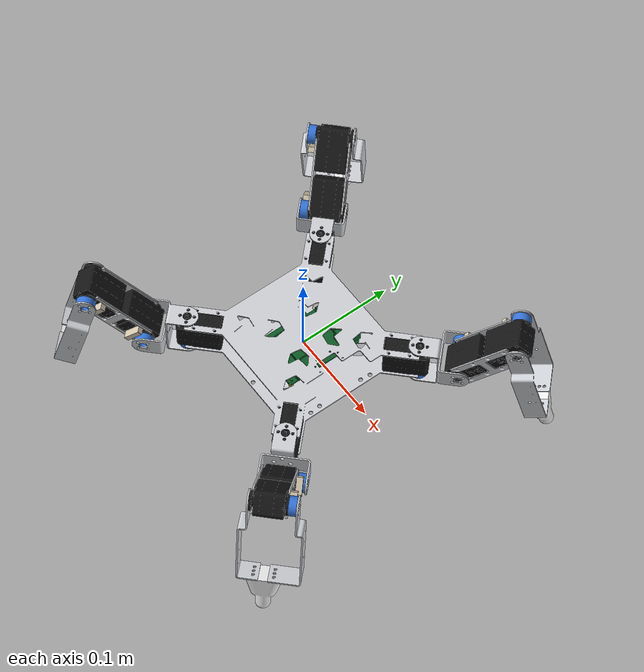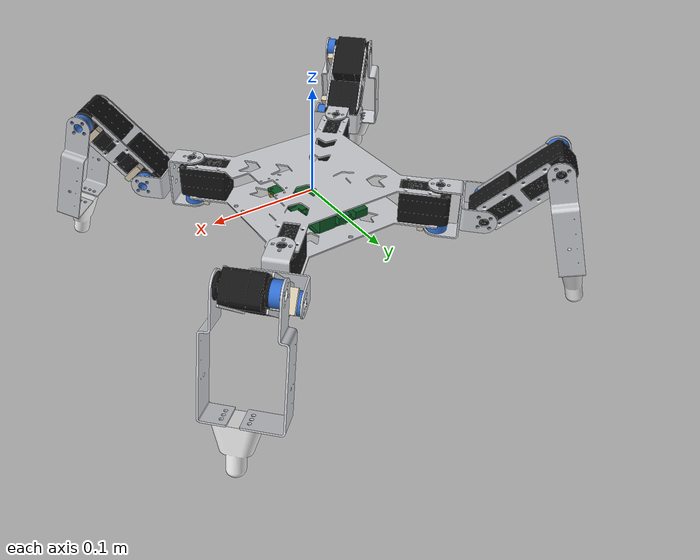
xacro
<?xml version="1.0"?>
<robot name="twist_2_0" xmlns:xacro="http://www.ros.org/wiki/xacro">

  <xacro:include filename="$(find twist_walker)/urdf/twist_2_0.urdf"/>

  <xacro:macro name="pos_joint" params="name">
    <joint name="${name}">
      <command_interface name="position"/>
      <state_interface name="position"><param name="initial_value">0.0</param></state_interface>
      <state_interface name="velocity"/>
      <state_interface name="effort"/>
    </joint>
  </xacro:macro>

  <xacro:macro name="leg" params="prefix">
    <xacro:pos_joint name="${prefix}_hip_yaw"/>
    <xacro:pos_joint name="${prefix}_hip_pitch"/>
    <xacro:pos_joint name="${prefix}_knee"/>
  </xacro:macro>

  <ros2_control name="TwistGzSystem" type="system">
    <hardware>
      <plugin>gz_ros2_control/GazeboSimSystem</plugin>
    </hardware>
    <xacro:leg prefix="FL"/>
    <xacro:leg prefix="FR"/>
    <xacro:leg prefix="RL"/>
    <xacro:leg prefix="RR"/>
  </ros2_control>

  <gazebo>
    <plugin filename="gz_ros2_control-system" name="gz_ros2_control::GazeboSimROS2ControlPlugin">
      <parameters>$(find twist_walker)/config/controllers.yaml</parameters>
    </plugin>
  </gazebo>

</robot>

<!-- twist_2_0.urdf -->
<robot name="twist_2_0">
  <material name="aluminium"><color rgba="0.8 0.81 0.83 1"/></material>
  <material name="servo"><color rgba="0.08 0.08 0.08 1"/></material>
  <material name="board"><color rgba="0.05 0.35 0.15 1"/></material>
  <material name="foot"><color rgba="0.93 0.93 0.93 1"/></material>
  <material name="standoff"><color rgba="0.8 0.65 0.3 1"/></material>
  <material name="plug"><color rgba="0.85 0.8 0.7 1"/></material>
  <material name="spacer"><color rgba="0.2 0.45 0.85 1"/></material>
  <link name="base_link">
    <inertial>
      <origin xyz="-0.000854272 0.00157116 -0.00122145" rpy="0 0 0"/>
      <mass value="0.40384"/>
      <inertia ixx="1.5767e-03" ixy="-2.7463e-06" ixz="4.7075e-06" iyy="1.5408e-03" iyz="1.4569e-06" izz="2.9927e-03"/>
    </inertial>
    <visual>
      <origin xyz="0 0 0" rpy="0 0 0"/>
      <geometry><mesh filename="package://twist_2_0_description/meshes/visual/base_link_aluminium.stl"/></geometry>
      <material name="aluminium"/>
    </visual>
    <visual>
      <origin xyz="0 0 0" rpy="0 0 0"/>
      <geometry><mesh filename="package://twist_2_0_description/meshes/visual/base_link_board.stl"/></geometry>
      <material name="board"/>
    </visual>
    <visual>
      <origin xyz="0 0 0" rpy="0 0 0"/>
      <geometry><mesh filename="package://twist_2_0_description/meshes/visual/base_link_standoff.stl"/></geometry>
      <material name="standoff"/>
    </visual>
    <visual>
      <origin xyz="0 0 0" rpy="0 0 0"/>
      <geometry><mesh filename="package://twist_2_0_description/meshes/visual/base_link_plug.stl"/></geometry>
      <material name="plug"/>
    </visual>
    <visual>
      <origin xyz="-0.0810867 0.0810867 0" rpy="1.5708 0 -0.785398"/>
      <geometry><mesh filename="package://twist_2_0_description/meshes/visual/sts3215.stl"/></geometry>
      <material name="servo"/>
    </visual>
    <visual>
      <origin xyz="0.0810867 -0.0810867 0" rpy="1.5708 0 2.35619"/>
      <geometry><mesh filename="package://twist_2_0_description/meshes/visual/sts3215.stl"/></geometry>
      <material name="servo"/>
    </visual>
    <visual>
      <origin xyz="-0.0810867 -0.0810867 0" rpy="1.5708 0 0.785398"/>
      <geometry><mesh filename="package://twist_2_0_description/meshes/visual/sts3215.stl"/></geometry>
      <material name="servo"/>
    </visual>
    <visual>
      <origin xyz="0.0809099 0.0809099 0" rpy="1.5708 0 -2.35619"/>
      <geometry><mesh filename="package://twist_2_0_description/meshes/visual/sts3215.stl"/></geometry>
      <material name="servo"/>
    </visual>
    <collision name="Twist_Bottom">
      <origin xyz="0 0 0" rpy="0 0 0"/>
      <geometry><mesh filename="package://twist_2_0_description/meshes/collision/base_link_0.stl"/></geometry>
    </collision>
    <collision name="Twist_Top">
      <origin xyz="0 0 0" rpy="0 0 0"/>
      <geometry><mesh filename="package://twist_2_0_description/meshes/collision/base_link_1.stl"/></geometry>
    </collision>
    <collision name="ESP32mP4mModulemDEVmKIT">
      <origin xyz="0 0 0" rpy="0 0 0"/>
      <geometry><mesh filename="package://twist_2_0_description/meshes/collision/base_link_2.stl"/></geometry>
    </collision>
    <collision name="Standoff_1">
      <origin xyz="0 0 0" rpy="0 0 0"/>
      <geometry><mesh filename="package://twist_2_0_description/meshes/collision/base_link_3.stl"/></geometry>
    </collision>
    <collision name="Standoff_2">
      <origin xyz="0 0 0" rpy="0 0 0"/>
      <geometry><mesh filename="package://twist_2_0_description/meshes/collision/base_link_4.stl"/></geometry>
    </collision>
    <collision name="Standoff_3">
      <origin xyz="0 0 0" rpy="0 0 0"/>
      <geometry><mesh filename="package://twist_2_0_description/meshes/collision/base_link_5.stl"/></geometry>
    </collision>
    <collision name="Standoff_4">
      <origin xyz="0 0 0" rpy="0 0 0"/>
      <geometry><mesh filename="package://twist_2_0_description/meshes/collision/base_link_6.stl"/></geometry>
    </collision>
    <collision name="STS3215_HipYaw_RL">
      <origin xyz="0 0 0" rpy="0 0 0"/>
      <geometry><mesh filename="package://twist_2_0_description/meshes/collision/base_link_7.stl"/></geometry>
    </collision>
    <collision name="Cable_HipYaw_RL">
      <origin xyz="0 0 0" rpy="0 0 0"/>
      <geometry><mesh filename="package://twist_2_0_description/meshes/collision/base_link_8.stl"/></geometry>
    </collision>
    <collision name="STS3215_HipYaw_FR">
      <origin xyz="0 0 0" rpy="0 0 0"/>
      <geometry><mesh filename="package://twist_2_0_description/meshes/collision/base_link_9.stl"/></geometry>
    </collision>
    <collision name="Cable_HipYaw_FR">
      <origin xyz="0 0 0" rpy="0 0 0"/>
      <geometry><mesh filename="package://twist_2_0_description/meshes/collision/base_link_10.stl"/></geometry>
    </collision>
    <collision name="STS3215_HipYaw_RR">
      <origin xyz="0 0 0" rpy="0 0 0"/>
      <geometry><mesh filename="package://twist_2_0_description/meshes/collision/base_link_11.stl"/></geometry>
    </collision>
    <collision name="Cable_HipYaw_RR">
      <origin xyz="0 0 0" rpy="0 0 0"/>
      <geometry><mesh filename="package://twist_2_0_description/meshes/collision/base_link_12.stl"/></geometry>
    </collision>
    <collision name="STS3215_HipYaw_FL">
      <origin xyz="0 0 0" rpy="0 0 0"/>
      <geometry><mesh filename="package://twist_2_0_description/meshes/collision/base_link_13.stl"/></geometry>
    </collision>
    <collision name="Cable_HipYaw_FL">
      <origin xyz="0 0 0" rpy="0 0 0"/>
      <geometry><mesh filename="package://twist_2_0_description/meshes/collision/base_link_14.stl"/></geometry>
    </collision>
  </link>
  <link name="FL_hip">
    <inertial>
      <origin xyz="0.0116093 0.0166749 -0.00358194" rpy="0 0 0"/>
      <mass value="0.01994"/>
      <inertia ixx="9.2944e-06" ixy="1.1357e-07" ixz="-5.8079e-07" iyy="7.1399e-06" iyz="-9.4267e-07" izz="8.1036e-06"/>
    </inertial>
    <visual>
      <origin xyz="0 0 0" rpy="0 0 0"/>
      <geometry><mesh filename="package://twist_2_0_description/meshes/visual/FL_hip_aluminium.stl"/></geometry>
      <material name="aluminium"/>
    </visual>
    <visual>
      <origin xyz="0 0 0" rpy="0 0 0"/>
      <geometry><mesh filename="package://twist_2_0_description/meshes/visual/FL_hip_spacer.stl"/></geometry>
      <material name="spacer"/>
    </visual>
    <collision name="Holder_HipYaw">
      <origin xyz="0 0 0" rpy="0 0 0"/>
      <geometry><mesh filename="package://twist_2_0_description/meshes/collision/FL_hip_0.stl"/></geometry>
    </collision>
    <collision name="Holder_HipPitch">
      <origin xyz="0 0 0" rpy="0 0 0"/>
      <geometry><mesh filename="package://twist_2_0_description/meshes/collision/FL_hip_1.stl"/></geometry>
    </collision>
    <collision name="Spacer_HipYaw">
      <origin xyz="0 0 0" rpy="0 0 0"/>
      <geometry><mesh filename="package://twist_2_0_description/meshes/collision/FL_hip_2.stl"/></geometry>
    </collision>
    <collision name="Spacer_HipPitch">
      <origin xyz="0 0 0" rpy="0 0 0"/>
      <geometry><mesh filename="package://twist_2_0_description/meshes/collision/FL_hip_3.stl"/></geometry>
    </collision>
  </link>
  <link name="FL_thigh">
    <inertial>
      <origin xyz="0.0189992 0.0195008 0.0272236" rpy="0 0 0"/>
      <mass value="0.12481"/>
      <inertia ixx="8.9071e-05" ixy="-1.9952e-05" ixz="-3.4088e-05" iyy="8.9071e-05" iyz="-3.4088e-05" izz="6.9105e-05"/>
    </inertial>
    <visual>
      <origin xyz="0 0 0" rpy="0 0 0"/>
      <geometry><mesh filename="package://twist_2_0_description/meshes/visual/FL_thigh_aluminium.stl"/></geometry>
      <material name="aluminium"/>
    </visual>
    <visual>
      <origin xyz="0 0 0" rpy="0 0 0"/>
      <geometry><mesh filename="package://twist_2_0_description/meshes/visual/FL_thigh_plug.stl"/></geometry>
      <material name="plug"/>
    </visual>
    <visual>
      <origin xyz="0 0 0" rpy="-3.14159 -0.785398 0.785398"/>
      <geometry><mesh filename="package://twist_2_0_description/meshes/visual/sts3215.stl"/></geometry>
      <material name="servo"/>
    </visual>
    <visual>
      <origin xyz="0.0385 0.0385 0.0544472" rpy="0 0.785398 -2.35619"/>
      <geometry><mesh filename="package://twist_2_0_description/meshes/visual/sts3215.stl"/></geometry>
      <material name="servo"/>
    </visual>
    <collision name="THIGH_STS3215_HipPitch">
      <origin xyz="0 0 0" rpy="0 0 0"/>
      <geometry><mesh filename="package://twist_2_0_description/meshes/collision/FL_thigh_0.stl"/></geometry>
    </collision>
    <collision name="THIGH_Thigh_Front">
      <origin xyz="0 0 0" rpy="0 0 0"/>
      <geometry><mesh filename="package://twist_2_0_description/meshes/collision/FL_thigh_1.stl"/></geometry>
    </collision>
    <collision name="THIGH_Thigh_Back">
      <origin xyz="0 0 0" rpy="0 0 0"/>
      <geometry><mesh filename="package://twist_2_0_description/meshes/collision/FL_thigh_2.stl"/></geometry>
    </collision>
    <collision name="THIGH_STS3215_Knee">
      <origin xyz="0 0 0" rpy="0 0 0"/>
      <geometry><mesh filename="package://twist_2_0_description/meshes/collision/FL_thigh_3.stl"/></geometry>
    </collision>
    <collision name="THIGH_Cable_HipPitch">
      <origin xyz="0 0 0" rpy="0 0 0"/>
      <geometry><mesh filename="package://twist_2_0_description/meshes/collision/FL_thigh_4.stl"/></geometry>
    </collision>
    <collision name="THIGH_Cable_Knee">
      <origin xyz="0 0 0" rpy="0 0 0"/>
      <geometry><mesh filename="package://twist_2_0_description/meshes/collision/FL_thigh_5.stl"/></geometry>
    </collision>
  </link>
  <link name="FL_shin">
    <inertial>
      <origin xyz="0.0113278 0.0145833 -0.0683783" rpy="0 0 0"/>
      <mass value="0.03688"/>
      <inertia ixx="7.2223e-05" ixy="6.4598e-06" ixz="1.5063e-05" iyy="7.4975e-05" iyz="7.7873e-06" izz="2.4087e-05"/>
    </inertial>
    <visual>
      <origin xyz="0 0 0" rpy="0 0 0"/>
      <geometry><mesh filename="package://twist_2_0_description/meshes/visual/FL_shin_aluminium.stl"/></geometry>
      <material name="aluminium"/>
    </visual>
    <visual>
      <origin xyz="0 0 0" rpy="0 0 0"/>
      <geometry><mesh filename="package://twist_2_0_description/meshes/visual/FL_shin_foot.stl"/></geometry>
      <material name="foot"/>
    </visual>
    <visual>
      <origin xyz="0 0 0" rpy="0 0 0"/>
      <geometry><mesh filename="package://twist_2_0_description/meshes/visual/FL_shin_spacer.stl"/></geometry>
      <material name="spacer"/>
    </visual>
    <collision name="SHIN_Shin_Horn">
      <origin xyz="0 0 0" rpy="0 0 0"/>
      <geometry><mesh filename="package://twist_2_0_description/meshes/collision/FL_shin_0.stl"/></geometry>
    </collision>
    <collision name="SHIN_Shin_Idler">
      <origin xyz="0 0 0" rpy="0 0 0"/>
      <geometry><mesh filename="package://twist_2_0_description/meshes/collision/FL_shin_1.stl"/></geometry>
    </collision>
    <collision name="SHIN_Foot">
      <origin xyz="0 0 0" rpy="0 0 0"/>
      <geometry><mesh filename="package://twist_2_0_description/meshes/collision/FL_shin_2.stl"/></geometry>
    </collision>
    <collision name="SHIN_Spacer_Knee">
      <origin xyz="0 0 0" rpy="0 0 0"/>
      <geometry><mesh filename="package://twist_2_0_description/meshes/collision/FL_shin_3.stl"/></geometry>
    </collision>
    <collision name="foot_tip">
      <origin xyz="0.0258498 0.0219084 -0.131914" rpy="0 0 0"/>
      <geometry><sphere radius="0.0075"/></geometry>
    </collision>
  </link>
  <link name="FR_hip">
    <inertial>
      <origin xyz="0.0166749 -0.0116093 -0.00358194" rpy="0 0 0"/>
      <mass value="0.01994"/>
      <inertia ixx="7.1399e-06" ixy="-1.1357e-07" ixz="-9.4267e-07" iyy="9.2944e-06" iyz="5.8079e-07" izz="8.1036e-06"/>
    </inertial>
    <visual>
      <origin xyz="0 0 0" rpy="0 0 0"/>
      <geometry><mesh filename="package://twist_2_0_description/meshes/visual/FR_hip_aluminium.stl"/></geometry>
      <material name="aluminium"/>
    </visual>
    <visual>
      <origin xyz="0 0 0" rpy="0 0 0"/>
      <geometry><mesh filename="package://twist_2_0_description/meshes/visual/FR_hip_spacer.stl"/></geometry>
      <material name="spacer"/>
    </visual>
    <collision name="Holder_HipYaw">
      <origin xyz="0 0 0" rpy="0 0 0"/>
      <geometry><mesh filename="package://twist_2_0_description/meshes/collision/FR_hip_0.stl"/></geometry>
    </collision>
    <collision name="Holder_HipPitch">
      <origin xyz="0 0 0" rpy="0 0 0"/>
      <geometry><mesh filename="package://twist_2_0_description/meshes/collision/FR_hip_1.stl"/></geometry>
    </collision>
    <collision name="Spacer_HipYaw">
      <origin xyz="0 0 0" rpy="0 0 0"/>
      <geometry><mesh filename="package://twist_2_0_description/meshes/collision/FR_hip_2.stl"/></geometry>
    </collision>
    <collision name="Spacer_HipPitch">
      <origin xyz="0 0 0" rpy="0 0 0"/>
      <geometry><mesh filename="package://twist_2_0_description/meshes/collision/FR_hip_3.stl"/></geometry>
    </collision>
  </link>
  <link name="FR_thigh">
    <inertial>
      <origin xyz="0.0195008 -0.0189992 0.0272236" rpy="0 0 0"/>
      <mass value="0.12481"/>
      <inertia ixx="8.9071e-05" ixy="1.9952e-05" ixz="-3.4088e-05" iyy="8.9071e-05" iyz="3.4088e-05" izz="6.9105e-05"/>
    </inertial>
    <visual>
      <origin xyz="0 0 0" rpy="0 0 0"/>
      <geometry><mesh filename="package://twist_2_0_description/meshes/visual/FR_thigh_aluminium.stl"/></geometry>
      <material name="aluminium"/>
    </visual>
    <visual>
      <origin xyz="0 0 0" rpy="0 0 0"/>
      <geometry><mesh filename="package://twist_2_0_description/meshes/visual/FR_thigh_plug.stl"/></geometry>
      <material name="plug"/>
    </visual>
    <visual>
      <origin xyz="0 0 0" rpy="3.14159 -0.785398 -0.785398"/>
      <geometry><mesh filename="package://twist_2_0_description/meshes/visual/sts3215.stl"/></geometry>
      <material name="servo"/>
    </visual>
    <visual>
      <origin xyz="0.0385 -0.0385 0.0544472" rpy="0 0.785398 2.35619"/>
      <geometry><mesh filename="package://twist_2_0_description/meshes/visual/sts3215.stl"/></geometry>
      <material name="servo"/>
    </visual>
    <collision name="THIGH_STS3215_HipPitch">
      <origin xyz="0 0 0" rpy="0 0 0"/>
      <geometry><mesh filename="package://twist_2_0_description/meshes/collision/FR_thigh_0.stl"/></geometry>
    </collision>
    <collision name="THIGH_Thigh_Front">
      <origin xyz="0 0 0" rpy="0 0 0"/>
      <geometry><mesh filename="package://twist_2_0_description/meshes/collision/FR_thigh_1.stl"/></geometry>
    </collision>
    <collision name="THIGH_Thigh_Back">
      <origin xyz="0 0 0" rpy="0 0 0"/>
      <geometry><mesh filename="package://twist_2_0_description/meshes/collision/FR_thigh_2.stl"/></geometry>
    </collision>
    <collision name="THIGH_STS3215_Knee">
      <origin xyz="0 0 0" rpy="0 0 0"/>
      <geometry><mesh filename="package://twist_2_0_description/meshes/collision/FR_thigh_3.stl"/></geometry>
    </collision>
    <collision name="THIGH_Cable_HipPitch">
      <origin xyz="0 0 0" rpy="0 0 0"/>
      <geometry><mesh filename="package://twist_2_0_description/meshes/collision/FR_thigh_4.stl"/></geometry>
    </collision>
    <collision name="THIGH_Cable_Knee">
      <origin xyz="0 0 0" rpy="0 0 0"/>
      <geometry><mesh filename="package://twist_2_0_description/meshes/collision/FR_thigh_5.stl"/></geometry>
    </collision>
  </link>
  <link name="FR_shin">
    <inertial>
      <origin xyz="0.0145833 -0.0113278 -0.0683783" rpy="0 0 0"/>
      <mass value="0.03688"/>
      <inertia ixx="7.4975e-05" ixy="-6.4598e-06" ixz="7.7873e-06" iyy="7.2223e-05" iyz="-1.5063e-05" izz="2.4087e-05"/>
    </inertial>
    <visual>
      <origin xyz="0 0 0" rpy="0 0 0"/>
      <geometry><mesh filename="package://twist_2_0_description/meshes/visual/FR_shin_aluminium.stl"/></geometry>
      <material name="aluminium"/>
    </visual>
    <visual>
      <origin xyz="0 0 0" rpy="0 0 0"/>
      <geometry><mesh filename="package://twist_2_0_description/meshes/visual/FR_shin_foot.stl"/></geometry>
      <material name="foot"/>
    </visual>
    <visual>
      <origin xyz="0 0 0" rpy="0 0 0"/>
      <geometry><mesh filename="package://twist_2_0_description/meshes/visual/FR_shin_spacer.stl"/></geometry>
      <material name="spacer"/>
    </visual>
    <collision name="SHIN_Shin_Horn">
      <origin xyz="0 0 0" rpy="0 0 0"/>
      <geometry><mesh filename="package://twist_2_0_description/meshes/collision/FR_shin_0.stl"/></geometry>
    </collision>
    <collision name="SHIN_Shin_Idler">
      <origin xyz="0 0 0" rpy="0 0 0"/>
      <geometry><mesh filename="package://twist_2_0_description/meshes/collision/FR_shin_1.stl"/></geometry>
    </collision>
    <collision name="SHIN_Foot">
      <origin xyz="0 0 0" rpy="0 0 0"/>
      <geometry><mesh filename="package://twist_2_0_description/meshes/collision/FR_shin_2.stl"/></geometry>
    </collision>
    <collision name="SHIN_Spacer_Knee">
      <origin xyz="0 0 0" rpy="0 0 0"/>
      <geometry><mesh filename="package://twist_2_0_description/meshes/collision/FR_shin_3.stl"/></geometry>
    </collision>
    <collision name="foot_tip">
      <origin xyz="0.0223142 -0.0254439 -0.131914" rpy="0 0 0"/>
      <geometry><sphere radius="0.0075"/></geometry>
    </collision>
  </link>
  <link name="RL_hip">
    <inertial>
      <origin xyz="-0.0166749 0.0116093 -0.00358194" rpy="0 0 0"/>
      <mass value="0.01994"/>
      <inertia ixx="7.1399e-06" ixy="-1.1357e-07" ixz="9.4267e-07" iyy="9.2944e-06" iyz="-5.8079e-07" izz="8.1036e-06"/>
    </inertial>
    <visual>
      <origin xyz="0 0 0" rpy="0 0 0"/>
      <geometry><mesh filename="package://twist_2_0_description/meshes/visual/RL_hip_aluminium.stl"/></geometry>
      <material name="aluminium"/>
    </visual>
    <visual>
      <origin xyz="0 0 0" rpy="0 0 0"/>
      <geometry><mesh filename="package://twist_2_0_description/meshes/visual/RL_hip_spacer.stl"/></geometry>
      <material name="spacer"/>
    </visual>
    <collision name="Holder_HipYaw">
      <origin xyz="0 0 0" rpy="0 0 0"/>
      <geometry><mesh filename="package://twist_2_0_description/meshes/collision/RL_hip_0.stl"/></geometry>
    </collision>
    <collision name="Holder_HipPitch">
      <origin xyz="0 0 0" rpy="0 0 0"/>
      <geometry><mesh filename="package://twist_2_0_description/meshes/collision/RL_hip_1.stl"/></geometry>
    </collision>
    <collision name="Spacer_HipYaw">
      <origin xyz="0 0 0" rpy="0 0 0"/>
      <geometry><mesh filename="package://twist_2_0_description/meshes/collision/RL_hip_2.stl"/></geometry>
    </collision>
    <collision name="Spacer_HipPitch">
      <origin xyz="0 0 0" rpy="0 0 0"/>
      <geometry><mesh filename="package://twist_2_0_description/meshes/collision/RL_hip_3.stl"/></geometry>
    </collision>
  </link>
  <link name="RL_thigh">
    <inertial>
      <origin xyz="-0.0195008 0.0189992 0.0272236" rpy="0 0 0"/>
      <mass value="0.12481"/>
      <inertia ixx="8.9071e-05" ixy="1.9952e-05" ixz="3.4088e-05" iyy="8.9071e-05" iyz="-3.4088e-05" izz="6.9105e-05"/>
    </inertial>
    <visual>
      <origin xyz="0 0 0" rpy="0 0 0"/>
      <geometry><mesh filename="package://twist_2_0_description/meshes/visual/RL_thigh_aluminium.stl"/></geometry>
      <material name="aluminium"/>
    </visual>
    <visual>
      <origin xyz="0 0 0" rpy="0 0 0"/>
      <geometry><mesh filename="package://twist_2_0_description/meshes/visual/RL_thigh_plug.stl"/></geometry>
      <material name="plug"/>
    </visual>
    <visual>
      <origin xyz="0 0 0" rpy="3.14159 -0.785398 2.35619"/>
      <geometry><mesh filename="package://twist_2_0_description/meshes/visual/sts3215.stl"/></geometry>
      <material name="servo"/>
    </visual>
    <visual>
      <origin xyz="-0.0385 0.0385 0.0544472" rpy="0 0.785398 -0.785398"/>
      <geometry><mesh filename="package://twist_2_0_description/meshes/visual/sts3215.stl"/></geometry>
      <material name="servo"/>
    </visual>
    <collision name="THIGH_STS3215_HipPitch">
      <origin xyz="0 0 0" rpy="0 0 0"/>
      <geometry><mesh filename="package://twist_2_0_description/meshes/collision/RL_thigh_0.stl"/></geometry>
    </collision>
    <collision name="THIGH_Thigh_Front">
      <origin xyz="0 0 0" rpy="0 0 0"/>
      <geometry><mesh filename="package://twist_2_0_description/meshes/collision/RL_thigh_1.stl"/></geometry>
    </collision>
    <collision name="THIGH_Thigh_Back">
      <origin xyz="0 0 0" rpy="0 0 0"/>
      <geometry><mesh filename="package://twist_2_0_description/meshes/collision/RL_thigh_2.stl"/></geometry>
    </collision>
    <collision name="THIGH_STS3215_Knee">
      <origin xyz="0 0 0" rpy="0 0 0"/>
      <geometry><mesh filename="package://twist_2_0_description/meshes/collision/RL_thigh_3.stl"/></geometry>
    </collision>
    <collision name="THIGH_Cable_HipPitch">
      <origin xyz="0 0 0" rpy="0 0 0"/>
      <geometry><mesh filename="package://twist_2_0_description/meshes/collision/RL_thigh_4.stl"/></geometry>
    </collision>
    <collision name="THIGH_Cable_Knee">
      <origin xyz="0 0 0" rpy="0 0 0"/>
      <geometry><mesh filename="package://twist_2_0_description/meshes/collision/RL_thigh_5.stl"/></geometry>
    </collision>
  </link>
  <link name="RL_shin">
    <inertial>
      <origin xyz="-0.0145833 0.0113278 -0.0683783" rpy="0 0 0"/>
      <mass value="0.03688"/>
      <inertia ixx="7.4975e-05" ixy="-6.4598e-06" ixz="-7.7873e-06" iyy="7.2223e-05" iyz="1.5063e-05" izz="2.4087e-05"/>
    </inertial>
    <visual>
      <origin xyz="0 0 0" rpy="0 0 0"/>
      <geometry><mesh filename="package://twist_2_0_description/meshes/visual/RL_shin_aluminium.stl"/></geometry>
      <material name="aluminium"/>
    </visual>
    <visual>
      <origin xyz="0 0 0" rpy="0 0 0"/>
      <geometry><mesh filename="package://twist_2_0_description/meshes/visual/RL_shin_foot.stl"/></geometry>
      <material name="foot"/>
    </visual>
    <visual>
      <origin xyz="0 0 0" rpy="0 0 0"/>
      <geometry><mesh filename="package://twist_2_0_description/meshes/visual/RL_shin_spacer.stl"/></geometry>
      <material name="spacer"/>
    </visual>
    <collision name="SHIN_Shin_Horn">
      <origin xyz="0 0 0" rpy="0 0 0"/>
      <geometry><mesh filename="package://twist_2_0_description/meshes/collision/RL_shin_0.stl"/></geometry>
    </collision>
    <collision name="SHIN_Shin_Idler">
      <origin xyz="0 0 0" rpy="0 0 0"/>
      <geometry><mesh filename="package://twist_2_0_description/meshes/collision/RL_shin_1.stl"/></geometry>
    </collision>
    <collision name="SHIN_Foot">
      <origin xyz="0 0 0" rpy="0 0 0"/>
      <geometry><mesh filename="package://twist_2_0_description/meshes/collision/RL_shin_2.stl"/></geometry>
    </collision>
    <collision name="SHIN_Spacer_Knee">
      <origin xyz="0 0 0" rpy="0 0 0"/>
      <geometry><mesh filename="package://twist_2_0_description/meshes/collision/RL_shin_3.stl"/></geometry>
    </collision>
    <collision name="foot_tip">
      <origin xyz="-0.0223142 0.0254439 -0.131914" rpy="0 0 0"/>
      <geometry><sphere radius="0.0075"/></geometry>
    </collision>
  </link>
  <link name="RR_hip">
    <inertial>
      <origin xyz="-0.0116093 -0.0166749 -0.00358194" rpy="0 0 0"/>
      <mass value="0.01994"/>
      <inertia ixx="9.2944e-06" ixy="1.1357e-07" ixz="5.8079e-07" iyy="7.1399e-06" iyz="9.4267e-07" izz="8.1036e-06"/>
    </inertial>
    <visual>
      <origin xyz="0 0 0" rpy="0 0 0"/>
      <geometry><mesh filename="package://twist_2_0_description/meshes/visual/RR_hip_aluminium.stl"/></geometry>
      <material name="aluminium"/>
    </visual>
    <visual>
      <origin xyz="0 0 0" rpy="0 0 0"/>
      <geometry><mesh filename="package://twist_2_0_description/meshes/visual/RR_hip_spacer.stl"/></geometry>
      <material name="spacer"/>
    </visual>
    <collision name="Holder_HipYaw">
      <origin xyz="0 0 0" rpy="0 0 0"/>
      <geometry><mesh filename="package://twist_2_0_description/meshes/collision/RR_hip_0.stl"/></geometry>
    </collision>
    <collision name="Holder_HipPitch">
      <origin xyz="0 0 0" rpy="0 0 0"/>
      <geometry><mesh filename="package://twist_2_0_description/meshes/collision/RR_hip_1.stl"/></geometry>
    </collision>
    <collision name="Spacer_HipYaw">
      <origin xyz="0 0 0" rpy="0 0 0"/>
      <geometry><mesh filename="package://twist_2_0_description/meshes/collision/RR_hip_2.stl"/></geometry>
    </collision>
    <collision name="Spacer_HipPitch">
      <origin xyz="0 0 0" rpy="0 0 0"/>
      <geometry><mesh filename="package://twist_2_0_description/meshes/collision/RR_hip_3.stl"/></geometry>
    </collision>
  </link>
  <link name="RR_thigh">
    <inertial>
      <origin xyz="-0.0189992 -0.0195008 0.0272236" rpy="0 0 0"/>
      <mass value="0.12481"/>
      <inertia ixx="8.9071e-05" ixy="-1.9952e-05" ixz="3.4088e-05" iyy="8.9071e-05" iyz="3.4088e-05" izz="6.9105e-05"/>
    </inertial>
    <visual>
      <origin xyz="0 0 0" rpy="0 0 0"/>
      <geometry><mesh filename="package://twist_2_0_description/meshes/visual/RR_thigh_aluminium.stl"/></geometry>
      <material name="aluminium"/>
    </visual>
    <visual>
      <origin xyz="0 0 0" rpy="0 0 0"/>
      <geometry><mesh filename="package://twist_2_0_description/meshes/visual/RR_thigh_plug.stl"/></geometry>
      <material name="plug"/>
    </visual>
    <visual>
      <origin xyz="0 0 0" rpy="3.14159 -0.785398 -2.35619"/>
      <geometry><mesh filename="package://twist_2_0_description/meshes/visual/sts3215.stl"/></geometry>
      <material name="servo"/>
    </visual>
    <visual>
      <origin xyz="-0.0385 -0.0385 0.0544472" rpy="0 0.785398 0.785398"/>
      <geometry><mesh filename="package://twist_2_0_description/meshes/visual/sts3215.stl"/></geometry>
      <material name="servo"/>
    </visual>
    <collision name="THIGH_STS3215_HipPitch">
      <origin xyz="0 0 0" rpy="0 0 0"/>
      <geometry><mesh filename="package://twist_2_0_description/meshes/collision/RR_thigh_0.stl"/></geometry>
    </collision>
    <collision name="THIGH_Thigh_Front">
      <origin xyz="0 0 0" rpy="0 0 0"/>
      <geometry><mesh filename="package://twist_2_0_description/meshes/collision/RR_thigh_1.stl"/></geometry>
    </collision>
    <collision name="THIGH_Thigh_Back">
      <origin xyz="0 0 0" rpy="0 0 0"/>
      <geometry><mesh filename="package://twist_2_0_description/meshes/collision/RR_thigh_2.stl"/></geometry>
    </collision>
    <collision name="THIGH_STS3215_Knee">
      <origin xyz="0 0 0" rpy="0 0 0"/>
      <geometry><mesh filename="package://twist_2_0_description/meshes/collision/RR_thigh_3.stl"/></geometry>
    </collision>
    <collision name="THIGH_Cable_HipPitch">
      <origin xyz="0 0 0" rpy="0 0 0"/>
      <geometry><mesh filename="package://twist_2_0_description/meshes/collision/RR_thigh_4.stl"/></geometry>
    </collision>
    <collision name="THIGH_Cable_Knee">
      <origin xyz="0 0 0" rpy="0 0 0"/>
      <geometry><mesh filename="package://twist_2_0_description/meshes/collision/RR_thigh_5.stl"/></geometry>
    </collision>
  </link>
  <link name="RR_shin">
    <inertial>
      <origin xyz="-0.0113278 -0.0145833 -0.0683783" rpy="0 0 0"/>
      <mass value="0.03688"/>
      <inertia ixx="7.2223e-05" ixy="6.4598e-06" ixz="-1.5063e-05" iyy="7.4975e-05" iyz="-7.7873e-06" izz="2.4087e-05"/>
    </inertial>
    <visual>
      <origin xyz="0 0 0" rpy="0 0 0"/>
      <geometry><mesh filename="package://twist_2_0_description/meshes/visual/RR_shin_aluminium.stl"/></geometry>
      <material name="aluminium"/>
    </visual>
    <visual>
      <origin xyz="0 0 0" rpy="0 0 0"/>
      <geometry><mesh filename="package://twist_2_0_description/meshes/visual/RR_shin_foot.stl"/></geometry>
      <material name="foot"/>
    </visual>
    <visual>
      <origin xyz="0 0 0" rpy="0 0 0"/>
      <geometry><mesh filename="package://twist_2_0_description/meshes/visual/RR_shin_spacer.stl"/></geometry>
      <material name="spacer"/>
    </visual>
    <collision name="SHIN_Shin_Horn">
      <origin xyz="0 0 0" rpy="0 0 0"/>
      <geometry><mesh filename="package://twist_2_0_description/meshes/collision/RR_shin_0.stl"/></geometry>
    </collision>
    <collision name="SHIN_Shin_Idler">
      <origin xyz="0 0 0" rpy="0 0 0"/>
      <geometry><mesh filename="package://twist_2_0_description/meshes/collision/RR_shin_1.stl"/></geometry>
    </collision>
    <collision name="SHIN_Foot">
      <origin xyz="0 0 0" rpy="0 0 0"/>
      <geometry><mesh filename="package://twist_2_0_description/meshes/collision/RR_shin_2.stl"/></geometry>
    </collision>
    <collision name="SHIN_Spacer_Knee">
      <origin xyz="0 0 0" rpy="0 0 0"/>
      <geometry><mesh filename="package://twist_2_0_description/meshes/collision/RR_shin_3.stl"/></geometry>
    </collision>
    <collision name="foot_tip">
      <origin xyz="-0.0254439 -0.0223142 -0.131914" rpy="0 0 0"/>
      <geometry><sphere radius="0.0075"/></geometry>
    </collision>
  </link>
  <joint name="RL_hip_yaw" type="revolute">
    <parent link="base_link"/>
    <child link="RL_hip"/>
    <origin xyz="-0.0810867 0.0810867 0" rpy="0 0 0"/>
    <axis xyz="0 0 1"/>
    <limit lower="-1.8675" upper="1.7977" effort="1.91" velocity="4.71"/>
    <safety_controller soft_lower_limit="-1.5708" soft_upper_limit="1.5708" k_position="20" k_velocity="0.5"/>
    <dynamics damping="0.05" friction="0.02"/>
  </joint>
  <joint name="RL_hip_pitch" type="revolute">
    <parent link="RL_hip"/>
    <child link="RL_thigh"/>
    <origin xyz="-0.0282843 0.0282843 0" rpy="0 0 0"/>
    <axis xyz="0.707107 0.707107 0"/>
    <limit lower="-2.1468" upper="1.0647" effort="1.91" velocity="4.71"/>
    <safety_controller soft_lower_limit="-1.5708" soft_upper_limit="0.8727" k_position="20" k_velocity="0.5"/>
    <dynamics damping="0.05" friction="0.02"/>
  </joint>
  <joint name="RL_knee" type="revolute">
    <parent link="RL_thigh"/>
    <child link="RL_shin"/>
    <origin xyz="-0.0385 0.0385 0.0544472" rpy="0 0 0"/>
    <axis xyz="0.707107 0.707107 0"/>
    <limit lower="-0.8552" upper="3.1416" effort="1.91" velocity="4.71"/>
    <safety_controller soft_lower_limit="-0.3491" soft_upper_limit="2.6180" k_position="20" k_velocity="0.5"/>
    <dynamics damping="0.05" friction="0.02"/>
  </joint>
  <joint name="FR_hip_yaw" type="revolute">
    <parent link="base_link"/>
    <child link="FR_hip"/>
    <origin xyz="0.0810867 -0.0810867 0" rpy="0 0 0"/>
    <axis xyz="0 0 1"/>
    <limit lower="-1.8675" upper="1.7977" effort="1.91" velocity="4.71"/>
    <safety_controller soft_lower_limit="-1.5708" soft_upper_limit="1.5708" k_position="20" k_velocity="0.5"/>
    <dynamics damping="0.05" friction="0.02"/>
  </joint>
  <joint name="FR_hip_pitch" type="revolute">
    <parent link="FR_hip"/>
    <child link="FR_thigh"/>
    <origin xyz="0.0282843 -0.0282843 0" rpy="0 0 0"/>
    <axis xyz="-0.707107 -0.707107 0"/>
    <limit lower="-2.1468" upper="1.0647" effort="1.91" velocity="4.71"/>
    <safety_controller soft_lower_limit="-1.5708" soft_upper_limit="0.8727" k_position="20" k_velocity="0.5"/>
    <dynamics damping="0.05" friction="0.02"/>
  </joint>
  <joint name="FR_knee" type="revolute">
    <parent link="FR_thigh"/>
    <child link="FR_shin"/>
    <origin xyz="0.0385 -0.0385 0.0544472" rpy="0 0 0"/>
    <axis xyz="-0.707107 -0.707107 0"/>
    <limit lower="-0.8552" upper="3.1416" effort="1.91" velocity="4.71"/>
    <safety_controller soft_lower_limit="-0.3491" soft_upper_limit="2.6180" k_position="20" k_velocity="0.5"/>
    <dynamics damping="0.05" friction="0.02"/>
  </joint>
  <joint name="RR_hip_yaw" type="revolute">
    <parent link="base_link"/>
    <child link="RR_hip"/>
    <origin xyz="-0.0810867 -0.0810867 0" rpy="0 0 0"/>
    <axis xyz="0 0 1"/>
    <limit lower="-1.8675" upper="1.7977" effort="1.91" velocity="4.71"/>
    <safety_controller soft_lower_limit="-1.5708" soft_upper_limit="1.5708" k_position="20" k_velocity="0.5"/>
    <dynamics damping="0.05" friction="0.02"/>
  </joint>
  <joint name="RR_hip_pitch" type="revolute">
    <parent link="RR_hip"/>
    <child link="RR_thigh"/>
    <origin xyz="-0.0282843 -0.0282843 0" rpy="0 0 0"/>
    <axis xyz="-0.707107 0.707107 0"/>
    <limit lower="-2.1468" upper="1.0647" effort="1.91" velocity="4.71"/>
    <safety_controller soft_lower_limit="-1.5708" soft_upper_limit="0.8727" k_position="20" k_velocity="0.5"/>
    <dynamics damping="0.05" friction="0.02"/>
  </joint>
  <joint name="RR_knee" type="revolute">
    <parent link="RR_thigh"/>
    <child link="RR_shin"/>
    <origin xyz="-0.0385 -0.0385 0.0544472" rpy="0 0 0"/>
    <axis xyz="-0.707107 0.707107 0"/>
    <limit lower="-0.8552" upper="3.1416" effort="1.91" velocity="4.71"/>
    <safety_controller soft_lower_limit="-0.3491" soft_upper_limit="2.6180" k_position="20" k_velocity="0.5"/>
    <dynamics damping="0.05" friction="0.02"/>
  </joint>
  <joint name="FL_hip_yaw" type="revolute">
    <parent link="base_link"/>
    <child link="FL_hip"/>
    <origin xyz="0.0809099 0.0809099 0" rpy="0 0 0"/>
    <axis xyz="0 0 1"/>
    <limit lower="-1.8675" upper="1.7977" effort="1.91" velocity="4.71"/>
    <safety_controller soft_lower_limit="-1.5708" soft_upper_limit="1.5708" k_position="20" k_velocity="0.5"/>
    <dynamics damping="0.05" friction="0.02"/>
  </joint>
  <joint name="FL_hip_pitch" type="revolute">
    <parent link="FL_hip"/>
    <child link="FL_thigh"/>
    <origin xyz="0.0282843 0.0282843 0" rpy="0 0 0"/>
    <axis xyz="0.707107 -0.707107 0"/>
    <limit lower="-2.1468" upper="1.0647" effort="1.91" velocity="4.71"/>
    <safety_controller soft_lower_limit="-1.5708" soft_upper_limit="0.8727" k_position="20" k_velocity="0.5"/>
    <dynamics damping="0.05" friction="0.02"/>
  </joint>
  <joint name="FL_knee" type="revolute">
    <parent link="FL_thigh"/>
    <child link="FL_shin"/>
    <origin xyz="0.0385 0.0385 0.0544472" rpy="0 0 0"/>
    <axis xyz="0.707107 -0.707107 0"/>
    <limit lower="-0.8552" upper="3.1416" effort="1.91" velocity="4.71"/>
    <safety_controller soft_lower_limit="-0.3491" soft_upper_limit="2.6180" k_position="20" k_velocity="0.5"/>
    <dynamics damping="0.05" friction="0.02"/>
  </joint>
  <gazebo reference="RL_shin">
    <mu1>1.0</mu1>
    <mu2>1.0</mu2>
    <kp>100000.0</kp>
    <kd>10.0</kd>
  </gazebo>
  <gazebo reference="FR_shin">
    <mu1>1.0</mu1>
    <mu2>1.0</mu2>
    <kp>100000.0</kp>
    <kd>10.0</kd>
  </gazebo>
  <gazebo reference="RR_shin">
    <mu1>1.0</mu1>
    <mu2>1.0</mu2>
    <kp>100000.0</kp>
    <kd>10.0</kd>
  </gazebo>
  <gazebo reference="FL_shin">
    <mu1>1.0</mu1>
    <mu2>1.0</mu2>
    <kp>100000.0</kp>
    <kd>10.0</kd>
  </gazebo>
</robot>
